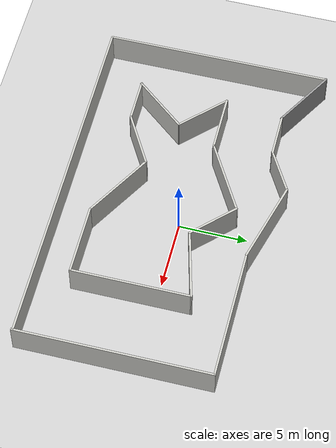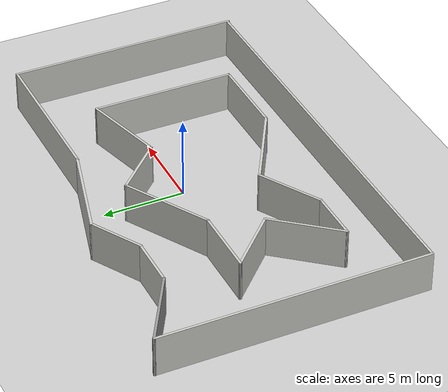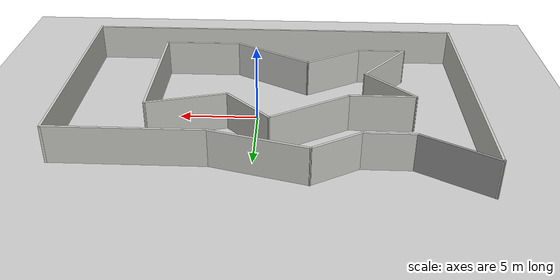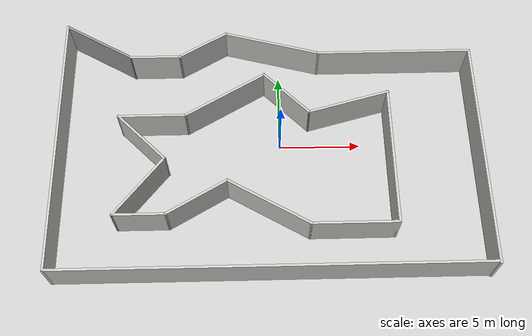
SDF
<?xml version='1.0'?>
<sdf version='1.6'>

   <world name="default">

    <include>
      <uri>model://ground_plane</uri>
    </include>

  <model name='racecar-world'>
    <pose frame=''>-0.717237 -0.389896 0 0 -0 0</pose>
    <link name='Wall_0'>
      <collision name='Wall_0_Collision'>
        <geometry>
          <box>
            <size>25.75 0.15 2.5</size>
          </box>
        </geometry>
        <pose frame=''>0 0 1.25 0 -0 0</pose>
      </collision>
      <visual name='Wall_0_Visual'>
        <pose frame=''>0 0 1.25 0 -0 0</pose>
        <geometry>
          <box>
            <size>25.75 0.15 2.5</size>
          </box>
        </geometry>
        <material>
          <script>
            <uri>file://media/materials/scripts/gazebo.material</uri>
            <name>Gazebo/CeilingTiled</name>
          </script>
          <ambient>1 1 1 1</ambient>
        </material>
        <meta>
          <layer>0</layer>
        </meta>
      </visual>
      <pose frame=''>-0.033052 -8.14933 0 0 -0 3.14159</pose>
    </link>
    <link name='Wall_36'>
      <collision name='Wall_36_Collision'>
        <geometry>
          <box>
            <size>16.5 0.15 2.5</size>
          </box>
        </geometry>
        <pose frame=''>0 0 1.25 0 -0 0</pose>
      </collision>
      <visual name='Wall_36_Visual'>
        <pose frame=''>0 0 1.25 0 -0 0</pose>
        <geometry>
          <box>
            <size>16.5 0.15 2.5</size>
          </box>
        </geometry>
        <material>
          <script>
            <uri>file://media/materials/scripts/gazebo.material</uri>
            <name>Gazebo/CeilingTiled</name>
          </script>
          <ambient>1 1 1 1</ambient>
        </material>
        <meta>
          <layer>0</layer>
        </meta>
      </visual>
      <pose frame=''>-12.8331 0.025673 0 0 -0 1.5708</pose>
    </link>
    <link name='Wall_37'>
      <collision name='Wall_37_Collision'>
        <geometry>
          <box>
            <size>5 0.15 2.5</size>
          </box>
        </geometry>
        <pose frame=''>0 0 1.25 0 -0 0</pose>
      </collision>
      <visual name='Wall_37_Visual'>
        <pose frame=''>0 0 1.25 0 -0 0</pose>
        <geometry>
          <box>
            <size>5 0.15 2.5</size>
          </box>
        </geometry>
        <material>
          <script>
            <uri>file://media/materials/scripts/gazebo.material</uri>
            <name>Gazebo/Grey</name>
          </script>
          <ambient>1 1 1 1</ambient>
        </material>
        <meta>
          <layer>0</layer>
        </meta>
      </visual>
      <pose frame=''>-10.7329 6.98817 0 0 -0 -0.523599</pose>
    </link>
    <link name='Wall_38'>
      <collision name='Wall_38_Collision'>
        <geometry>
          <box>
            <size>3.25 0.15 2.5</size>
          </box>
        </geometry>
        <pose frame=''>0 0 1.25 0 -0 0</pose>
      </collision>
      <visual name='Wall_38_Visual'>
        <pose frame=''>0 0 1.25 0 -0 0</pose>
        <geometry>
          <box>
            <size>3.25 0.15 2.5</size>
          </box>
        </geometry>
        <material>
          <script>
            <uri>file://media/materials/scripts/gazebo.material</uri>
            <name>Gazebo/CeilingTiled</name>
          </script>
          <ambient>1 1 1 1</ambient>
        </material>
        <meta>
          <layer>0</layer>
        </meta>
      </visual>
      <pose frame=''>-7.08283 5.77567 0 0 -0 0</pose>
    </link>
    <link name='Wall_39'>
      <collision name='Wall_39_Collision'>
        <geometry>
          <box>
            <size>3.5 0.15 2.5</size>
          </box>
        </geometry>
        <pose frame=''>0 0 1.25 0 -0 0</pose>
      </collision>
      <visual name='Wall_39_Visual'>
        <pose frame=''>0 0 1.25 0 -0 0</pose>
        <geometry>
          <box>
            <size>3.5 0.15 2.5</size>
          </box>
        </geometry>
        <material>
          <script>
            <uri>file://media/materials/scripts/gazebo.material</uri>
            <name>Gazebo/CeilingTiled</name>
          </script>
          <ambient>1 1 1 1</ambient>
        </material>
        <meta>
          <layer>0</layer>
        </meta>
      </visual>
      <pose frame=''>-4.08224 6.61317 0 0 -0 0.523599</pose>
    </link>
    <link name='Wall_40'>
      <collision name='Wall_40_Collision'>
        <geometry>
          <box>
            <size>6.25 0.15 2.5</size>
          </box>
        </geometry>
        <pose frame=''>0 0 1.25 0 -0 0</pose>
      </collision>
      <visual name='Wall_40_Visual'>
        <pose frame=''>0 0 1.25 0 -0 0</pose>
        <geometry>
          <box>
            <size>6.25 0.15 2.5</size>
          </box>
        </geometry>
        <material>
          <script>
            <uri>file://media/materials/scripts/gazebo.material</uri>
            <name>Gazebo/CeilingTiled</name>
          </script>
          <ambient>1 1 1 1</ambient>
        </material>
        <meta>
          <layer>0</layer>
        </meta>
      </visual>
      <pose frame=''>0.31443 6.66127 0 0 -0 -0.261799</pose>
    </link>
    <link name='Wall_41'>
      <collision name='Wall_41_Collision'>
        <geometry>
          <box>
            <size>9.75 0.15 2.5</size>
          </box>
        </geometry>
        <pose frame=''>0 0 1.25 0 -0 0</pose>
      </collision>
      <visual name='Wall_41_Visual'>
        <pose frame=''>0 0 1.25 0 -0 0</pose>
        <geometry>
          <box>
            <size>9.75 0.15 2.5</size>
          </box>
        </geometry>
        <material>
          <script>
            <uri>file://media/materials/scripts/gazebo.material</uri>
            <name>Gazebo/CeilingTiled</name>
          </script>
          <ambient>1 1 1 1</ambient>
        </material>
        <meta>
          <layer>0</layer>
        </meta>
      </visual>
      <pose frame=''>8.0605 5.87188 0 0 -0 0</pose>
    </link>
    <link name='Wall_42'>
      <collision name='Wall_42_Collision'>
        <geometry>
          <box>
            <size>14.25 0.15 2.5</size>
          </box>
        </geometry>
        <pose frame=''>0 0 1.25 0 -0 0</pose>
      </collision>
      <visual name='Wall_42_Visual'>
        <pose frame=''>0 0 1.25 0 -0 0</pose>
        <geometry>
          <box>
            <size>14.25 0.15 2.5</size>
          </box>
        </geometry>
        <material>
          <script>
            <uri>file://media/materials/scripts/gazebo.material</uri>
            <name>Gazebo/CeilingTiled</name>
          </script>
          <ambient>1 1 1 1</ambient>
        </material>
        <meta>
          <layer>0</layer>
        </meta>
      </visual>
      <pose frame=''>12.8605 -1.17812 0 0 -0 -1.5708</pose>
    </link>
    <link name='Wall_44'>
      <collision name='Wall_44_Collision'>
        <geometry>
          <box>
            <size>3.25 0.15 2.5</size>
          </box>
        </geometry>
        <pose frame=''>0 0 1.25 0 -0 0</pose>
      </collision>
      <visual name='Wall_44_Visual'>
        <pose frame=''>0 0 1.25 0 -0 0</pose>
        <geometry>
          <box>
            <size>3.25 0.15 2.5</size>
          </box>
        </geometry>
        <material>
          <script>
            <uri>file://media/materials/scripts/gazebo.material</uri>
            <name>Gazebo/CeilingTiled</name>
          </script>
          <ambient>1 1 1 1</ambient>
        </material>
        <meta>
          <layer>0</layer>
        </meta>
      </visual>
      <pose frame=''>-7.61987 -4.91582 0 0 -0 0</pose>
    </link>
    <link name='Wall_45'>
      <collision name='Wall_45_Collision'>
        <geometry>
          <box>
            <size>4.25 0.15 2.5</size>
          </box>
        </geometry>
        <pose frame=''>0 0 1.25 0 -0 0</pose>
      </collision>
      <visual name='Wall_45_Visual'>
        <pose frame=''>0 0 1.25 0 -0 0</pose>
        <geometry>
          <box>
            <size>4.25 0.15 2.5</size>
          </box>
        </geometry>
        <material>
          <script>
            <uri>file://media/materials/scripts/gazebo.material</uri>
            <name>Gazebo/CeilingTiled</name>
          </script>
          <ambient>1 1 1 1</ambient>
        </material>
        <meta>
          <layer>0</layer>
        </meta>
      </visual>
      <pose frame=''>-4.29452 -3.89082 0 0 -0 0.523599</pose>
    </link>
    <link name='Wall_46'>
      <collision name='Wall_46_Collision'>
        <geometry>
          <box>
            <size>5.75 0.15 2.5</size>
          </box>
        </geometry>
        <pose frame=''>0 0 1.25 0 -0 0</pose>
      </collision>
      <visual name='Wall_46_Visual'>
        <pose frame=''>0 0 1.25 0 -0 0</pose>
        <geometry>
          <box>
            <size>5.75 0.15 2.5</size>
          </box>
        </geometry>
        <material>
          <script>
            <uri>file://media/materials/scripts/gazebo.material</uri>
            <name>Gazebo/CeilingTiled</name>
          </script>
          <ambient>1 1 1 1</ambient>
        </material>
        <meta>
          <layer>0</layer>
        </meta>
      </visual>
      <pose frame=''>-0.094293 -4.26582 0 0 -0 -0.523599</pose>
    </link>
    <link name='Wall_47'>
      <collision name='Wall_47_Collision'>
        <geometry>
          <box>
            <size>5.25 0.15 2.5</size>
          </box>
        </geometry>
        <pose frame=''>0 0 1.25 0 -0 0</pose>
      </collision>
      <visual name='Wall_47_Visual'>
        <pose frame=''>0 0 1.25 0 -0 0</pose>
        <geometry>
          <box>
            <size>5.25 0.15 2.5</size>
          </box>
        </geometry>
        <material>
          <script>
            <uri>file://media/materials/scripts/gazebo.material</uri>
            <name>Gazebo/CeilingTiled</name>
          </script>
          <ambient>1 1 1 1</ambient>
        </material>
        <meta>
          <layer>0</layer>
        </meta>
      </visual>
      <pose frame=''>4.88058 -5.66582 0 0 -0 0</pose>
    </link>
    <link name='Wall_48'>
      <collision name='Wall_48_Collision'>
        <geometry>
          <box>
            <size>8.75 0.15 2.5</size>
          </box>
        </geometry>
        <pose frame=''>0 0 1.25 0 -0 0</pose>
      </collision>
      <visual name='Wall_48_Visual'>
        <pose frame=''>0 0 1.25 0 -0 0</pose>
        <geometry>
          <box>
            <size>8.75 0.15 2.5</size>
          </box>
        </geometry>
        <material>
          <script>
            <uri>file://media/materials/scripts/gazebo.material</uri>
            <name>Gazebo/CeilingTiled</name>
          </script>
          <ambient>1 1 1 1</ambient>
        </material>
        <meta>
          <layer>0</layer>
        </meta>
      </visual>
      <pose frame=''>7.43058 -1.36582 0 0 -0 1.5708</pose>
    </link>
    <link name='Wall_49'>
      <collision name='Wall_49_Collision'>
        <geometry>
          <box>
            <size>5.25 0.15 2.5</size>
          </box>
        </geometry>
        <pose frame=''>0 0 1.25 0 -0 0</pose>
      </collision>
      <visual name='Wall_49_Visual'>
        <pose frame=''>0 0 1.25 0 -0 0</pose>
        <geometry>
          <box>
            <size>5.25 0.15 2.5</size>
          </box>
        </geometry>
        <material>
          <script>
            <uri>file://media/materials/scripts/gazebo.material</uri>
            <name>Gazebo/CeilingTiled</name>
          </script>
          <ambient>1 1 1 1</ambient>
        </material>
        <meta>
          <layer>0</layer>
        </meta>
      </visual>
      <pose frame=''>4.96747 2.27419 0 0 -0 -2.87979</pose>
    </link>
    <link name='Wall_50'>
      <collision name='Wall_50_Collision'>
        <geometry>
          <box>
            <size>4 0.15 2.5</size>
          </box>
        </geometry>
        <pose frame=''>0 0 1.25 0 -0 0</pose>
      </collision>
      <visual name='Wall_50_Visual'>
        <pose frame=''>0 0 1.25 0 -0 0</pose>
        <geometry>
          <box>
            <size>4 0.15 2.5</size>
          </box>
        </geometry>
        <material>
          <script>
            <uri>file://media/materials/scripts/gazebo.material</uri>
            <name>Gazebo/CeilingTiled</name>
          </script>
          <ambient>1 1 1 1</ambient>
        </material>
        <meta>
          <layer>0</layer>
        </meta>
      </visual>
      <pose frame=''>1.14318 2.97538 0 0 -0 2.35619</pose>
    </link>
    <link name='Wall_51'>
      <collision name='Wall_51_Collision'>
        <geometry>
          <box>
            <size>5.75 0.15 2.5</size>
          </box>
        </geometry>
        <pose frame=''>0 0 1.25 0 -0 0</pose>
      </collision>
      <visual name='Wall_51_Visual'>
        <pose frame=''>0 0 1.25 0 -0 0</pose>
        <geometry>
          <box>
            <size>5.75 0.15 2.5</size>
          </box>
        </geometry>
        <material>
          <script>
            <uri>file://media/materials/scripts/gazebo.material</uri>
            <name>Gazebo/CeilingTiled</name>
          </script>
          <ambient>1 1 1 1</ambient>
        </material>
        <meta>
          <layer>0</layer>
        </meta>
      </visual>
      <pose frame=''>-2.64288 2.93656 0 0 -0 -2.61799</pose>
    </link>
    <link name='Wall_52'>
      <collision name='Wall_52_Collision'>
        <geometry>
          <box>
            <size>4.25 0.15 2.5</size>
          </box>
        </geometry>
        <pose frame=''>0 0 1.25 0 -0 0</pose>
      </collision>
      <visual name='Wall_52_Visual'>
        <pose frame=''>0 0 1.25 0 -0 0</pose>
        <geometry>
          <box>
            <size>4.25 0.15 2.5</size>
          </box>
        </geometry>
        <material>
          <script>
            <uri>file://media/materials/scripts/gazebo.material</uri>
            <name>Gazebo/CeilingTiled</name>
          </script>
          <ambient>1 1 1 1</ambient>
        </material>
        <meta>
          <layer>0</layer>
        </meta>
      </visual>
      <pose frame=''>-7.11775 1.53656 0 0 -0 3.14159</pose>
    </link>
    <link name='Wall_53'>
      <collision name='Wall_53_Collision'>
        <geometry>
          <box>
            <size>4.25 0.15 2.5</size>
          </box>
        </geometry>
        <pose frame=''>0 0 1.25 0 -0 0</pose>
      </collision>
      <visual name='Wall_53_Visual'>
        <pose frame=''>0 0 1.25 0 -0 0</pose>
        <geometry>
          <box>
            <size>4.25 0.15 2.5</size>
          </box>
        </geometry>
        <material>
          <script>
            <uri>file://media/materials/scripts/gazebo.material</uri>
            <name>Gazebo/CeilingTiled</name>
          </script>
          <ambient>1 1 1 1</ambient>
        </material>
        <meta>
          <layer>0</layer>
        </meta>
      </visual>
      <pose frame=''>-7.71818 0.086995 0 0 -0 -0.785398</pose>
    </link>
    <link name='Wall_54'>
      <collision name='Wall_54_Collision'>
        <geometry>
          <box>
            <size>4.73725 0.15 2.5</size>
          </box>
        </geometry>
        <pose frame=''>0 0 1.25 0 -0 0</pose>
      </collision>
      <visual name='Wall_54_Visual'>
        <pose frame=''>0 0 1.25 0 -0 0</pose>
        <geometry>
          <box>
            <size>4.73725 0.15 2.5</size>
          </box>
        </geometry>
        <material>
          <script>
            <uri>file://media/materials/scripts/gazebo.material</uri>
            <name>Gazebo/CeilingTiled</name>
          </script>
          <ambient>1 1 1 1</ambient>
        </material>
        <meta>
          <layer>0</layer>
        </meta>
      </visual>
      <pose frame=''>-7.71924 -3.1392 0 0 -0 -2.25552</pose>
    </link>
    <static>1</static>
  </model>
   <!-- Global light source -->
    <include>
      <uri>model://sun</uri>
    </include>

    <!-- Focus camera on tall pendulum -->
    <gui fullscreen='0'>
      <camera name='user_camera'>
        <pose>4.927360 -4.376610 3.740080 0.000000 0.275643 2.356190</pose>
        <view_controller>orbit</view_controller>
      </camera>
    </gui>

  </world>
</sdf>
